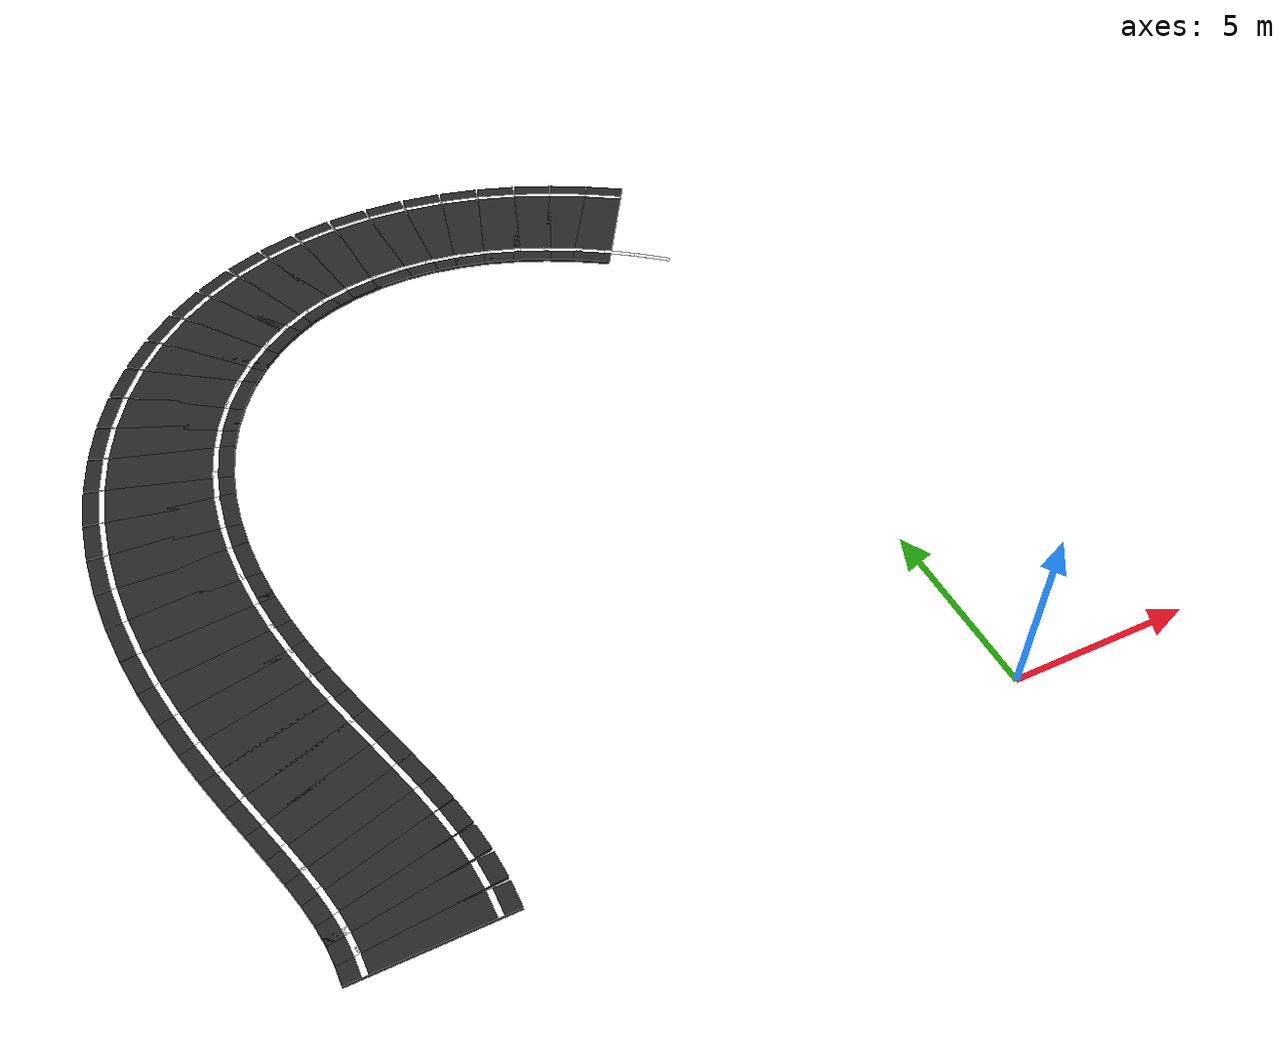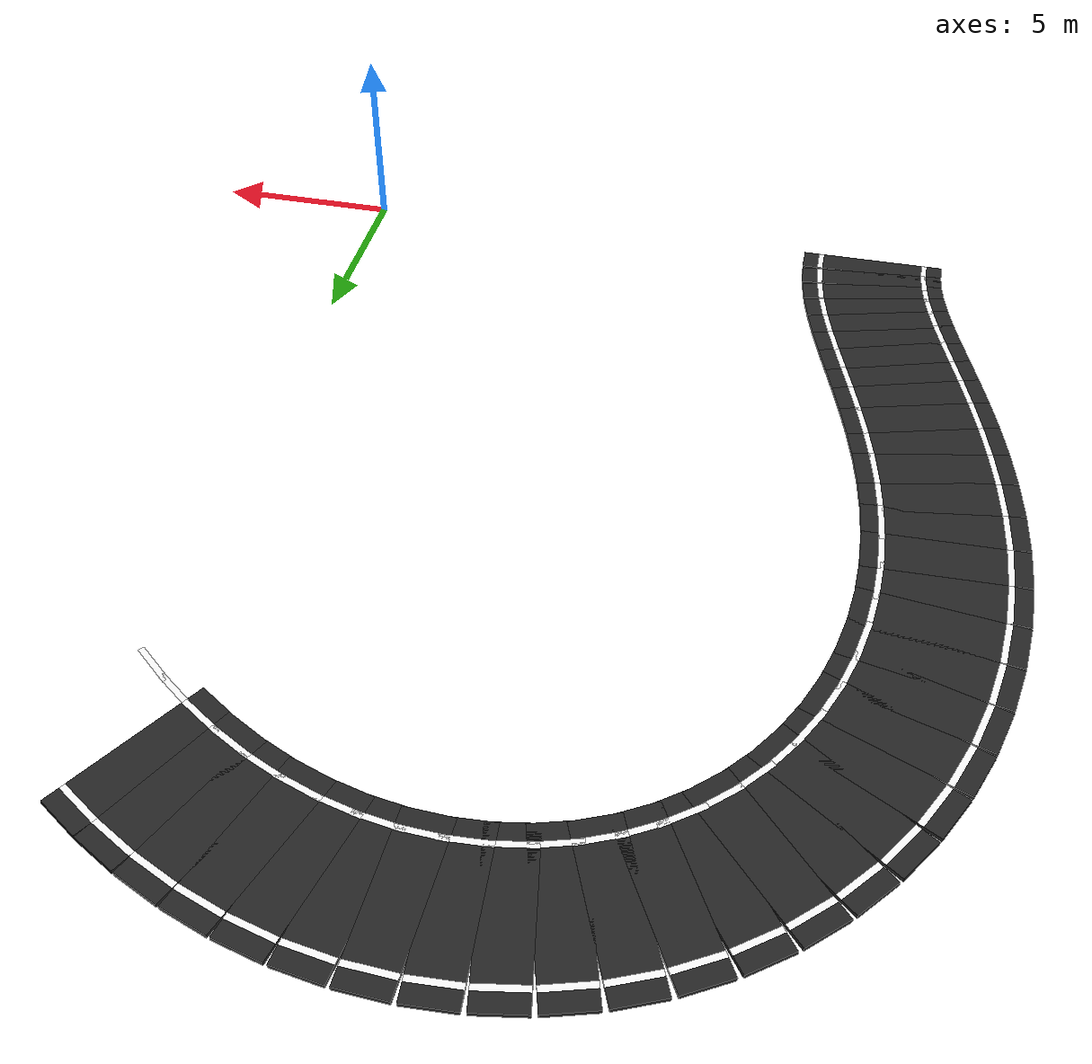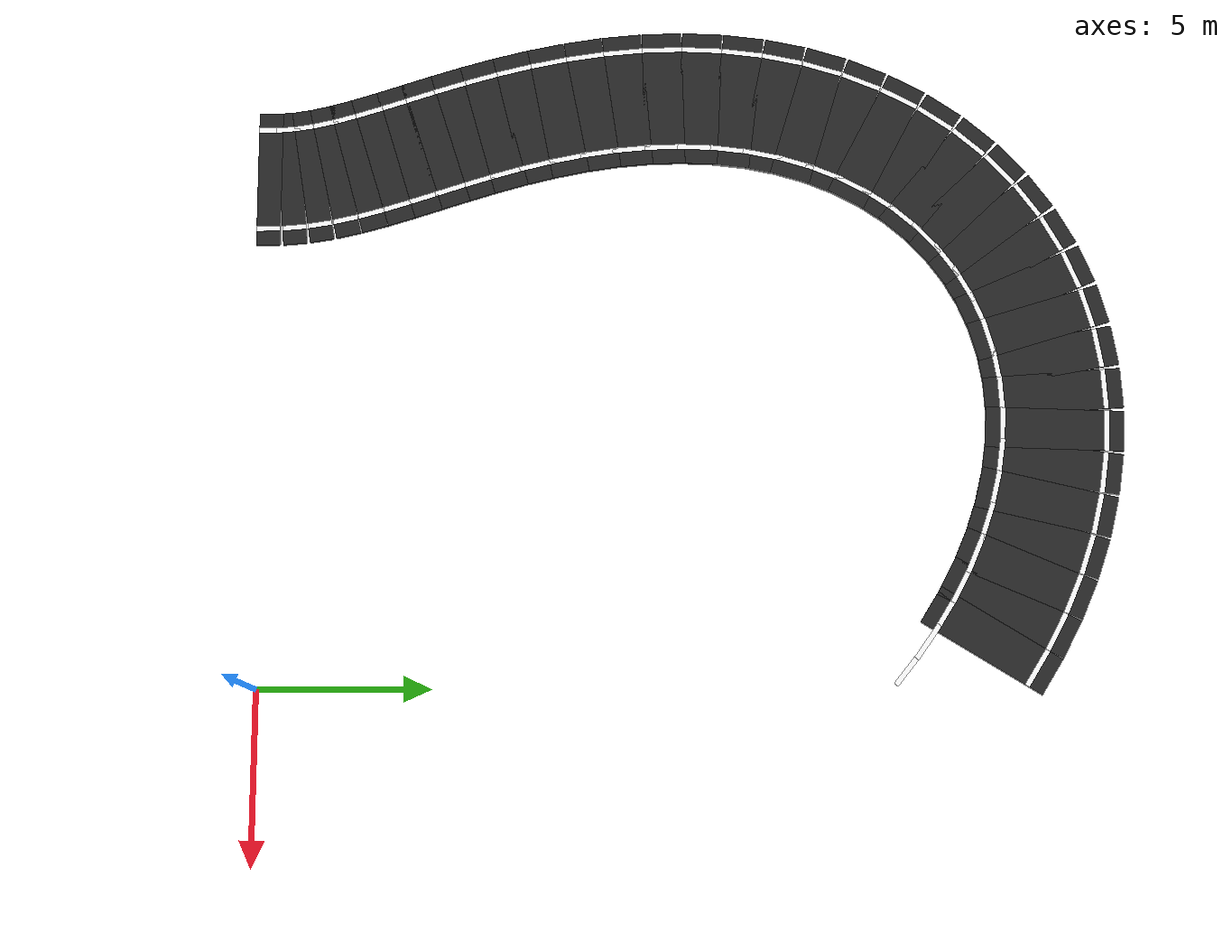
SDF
<sdf version="1.9">
 <world name="curved_race_track">
  <model name="race_track">
   <static>true</static>
   <link name="left_line_37">
    <pose>-0.5205032876881366 18.507026764634727 0.101 0 0 2.470488366783148</pose>
    <visual name="v">
     <geometry><box><size>1.151499805988907 0.15 0.001</size></box></geometry>
     <material><ambient>1 1 1 1</ambient><emissive>0.3 0.3 0.3 1</emissive></material>
    </visual>
   </link>
   <link name="left_line_38">
    <pose>-1.2898240428921142 19.083605329402197 0.101 0 0 2.5274388740351608</pose>
    <visual name="v">
     <geometry><box><size>1.1714934133066275 0.15 0.001</size></box></geometry>
     <material><ambient>1 1 1 1</ambient><emissive>0.3 0.3 0.3 1</emissive></material>
    </visual>
   </link>
   <link name="asphalt_39">
    <pose>-1.314639241050885 20.89559237038833 0.05 0 0 2.5911874485783626</pose>
    <visual name="v">
     <geometry><box><size>1.185370126031344 4.0 0.1</size></box></geometry>
     <material><ambient>0.15 0.15 0.15 1</ambient><diffuse>0.15 0.15 0.15 1</diffuse></material>
    </visual>
    <collision name="c"><geometry><box><size>1.185370126031344 4.0 0.1</size></box></geometry></collision>
   </link>
   <link name="left_line_39">
    <pose>-2.09918819088031 19.61712338549994 0.101 0 0 2.5911874485783626</pose>
    <visual name="v">
     <geometry><box><size>1.185370126031344 0.15 0.001</size></box></geometry>
     <material><ambient>1 1 1 1</ambient><emissive>0.3 0.3 0.3 1</emissive></material>
    </visual>
   </link>
   <link name="right_line_39">
    <pose>-0.5300902912214599 22.174061355276717 0.101 0 0 2.5911874485783626</pose>
    <visual name="v">
     <geometry><box><size>1.185370126031344 0.15 0.001</size></box></geometry>
     <material><ambient>1 1 1 1</ambient><emissive>0.3 0.3 0.3 1</emissive></material>
    </visual>
   </link>
   <link name="asphalt_40">
    <pose>-2.252074623081078 21.427058742099366 0.05 0 0 2.661450680192494</pose>
    <visual name="v">
     <geometry><box><size>1.1935129791848818 4.0 0.1</size></box></geometry>
     <material><ambient>0.15 0.15 0.15 1</ambient><diffuse>0.15 0.15 0.15 1</diffuse></material>
    </visual>
    <collision name="c"><geometry><box><size>1.1935129791848818 4.0 0.1</size></box></geometry></collision>
   </link>
   <link name="left_line_40">
    <pose>-2.9449322739356587 20.096664711876638 0.101 0 0 2.661450680192494</pose>
    <visual name="v">
     <geometry><box><size>1.1935129791848818 0.15 0.001</size></box></geometry>
     <material><ambient>1 1 1 1</ambient><emissive>0.3 0.3 0.3 1</emissive></material>
    </visual>
   </link>
   <link name="right_line_40">
    <pose>-1.5592169722264977 22.757452772322093 0.101 0 0 2.661450680192494</pose>
    <visual name="v">
     <geometry><box><size>1.1935129791848818 0.15 0.001</size></box></geometry>
     <material><ambient>1 1 1 1</ambient><emissive>0.3 0.3 0.3 1</emissive></material>
    </visual>
   </link>
   <link name="asphalt_41">
    <pose>-3.23265621330315 21.891505024729305 0.05 0 0 2.7380340063387227</pose>
    <visual name="v">
     <geometry><box><size>1.1965258177165115 4.0 0.1</size></box></geometry>
     <material><ambient>0.15 0.15 0.15 1</ambient><diffuse>0.15 0.15 0.15 1</diffuse></material>
    </visual>
    <collision name="c"><geometry><box><size>1.1965258177165115 4.0 0.1</size></box></geometry></collision>
   </link>
   <link name="left_line_41">
    <pose>-3.8216966144675992 20.512000981315143 0.101 0 0 2.7380340063387227</pose>
    <visual name="v">
     <geometry><box><size>1.1965258177165115 0.15 0.001</size></box></geometry>
     <material><ambient>1 1 1 1</ambient><emissive>0.3 0.3 0.3 1</emissive></material>
    </visual>
   </link>
   <link name="right_line_41">
    <pose>-2.6436158121387003 23.271009068143467 0.101 0 0 2.7380340063387227</pose>
    <visual name="v">
     <geometry><box><size>1.1965258177165115 0.15 0.001</size></box></geometry>
     <material><ambient>1 1 1 1</ambient><emissive>0.3 0.3 0.3 1</emissive></material>
    </visual>
   </link>
   <link name="asphalt_42">
    <pose>-4.2496459378815965 22.27742416110719 0.05 0 0 2.8207888178940044</pose>
    <visual name="v">
     <geometry><box><size>1.1952063372059092 4.0 0.1</size></box></geometry>
     <material><ambient>0.15 0.15 0.15 1</ambient><diffuse>0.15 0.15 0.15 1</diffuse></material>
    </visual>
    <collision name="c"><geometry><box><size>1.1952063372059092 4.0 0.1</size></box></geometry></collision>
   </link>
   <link name="left_line_42">
    <pose>-4.722640170208347 20.853950783700494 0.101 0 0 2.8207888178940044</pose>
    <visual name="v">
     <geometry><box><size>1.1952063372059092 0.15 0.001</size></box></geometry>
     <material><ambient>1 1 1 1</ambient><emissive>0.3 0.3 0.3 1</emissive></material>
    </visual>
   </link>
   <link name="right_line_42">
    <pose>-3.7766517055548454 23.70089753851389 0.101 0 0 2.8207888178940044</pose>
    <visual name="v">
     <geometry><box><size>1.1952063372059092 0.15 0.001</size></box></geometry>
     <material><ambient>1 1 1 1</ambient><emissive>0.3 0.3 0.3 1</emissive></material>
    </visual>
   </link>
   <link name="asphalt_43">
    <pose>-5.294799015655711 22.574490800486018 0.05 0 0 2.909566555719612</pose>
    <visual name="v">
     <geometry><box><size>1.1905118190557087 4.0 0.1</size></box></geometry>
     <material><ambient>0.15 0.15 0.15 1</ambient><diffuse>0.15 0.15 0.15 1</diffuse></material>
    </visual>
    <collision name="c"><geometry><box><size>1.1905118190557087 4.0 0.1</size></box></geometry></collision>
   </link>
   <link name="left_line_43">
    <pose>-5.639723712149741 21.11468706239363 0.101 0 0 2.909566555719612</pose>
    <visual name="v">
     <geometry><box><size>1.1905118190557087 0.15 0.001</size></box></geometry>
     <material><ambient>1 1 1 1</ambient><emissive>0.3 0.3 0.3 1</emissive></material>
    </visual>
   </link>
   <link name="right_line_43">
    <pose>-4.9498743191616805 24.034294538578404 0.101 0 0 2.909566555719612</pose>
    <visual name="v">
     <geometry><box><size>1.1905118190557087 0.15 0.001</size></box></geometry>
     <material><ambient>1 1 1 1</ambient><emissive>0.3 0.3 0.3 1</emissive></material>
    </visual>
   </link>
   <link name="asphalt_44">
    <pose>-6.358566974906923 22.773827807464027 0.05 0 0 3.004169273399351</pose>
    <visual name="v">
     <geometry><box><size>1.1835150671737356 4.0 0.1</size></box></geometry>
     <material><ambient>0.15 0.15 0.15 1</ambient><diffuse>0.15 0.15 0.15 1</diffuse></material>
    </visual>
    <collision name="c"><geometry><box><size>1.1835150671737356 4.0 0.1</size></box></geometry></collision>
   </link>
   <link name="left_line_44">
    <pose>-6.564053841064094 21.28796941991934 0.101 0 0 3.004169273399351</pose>
    <visual name="v">
     <geometry><box><size>1.1835150671737356 0.15 0.001</size></box></geometry>
     <material><ambient>1 1 1 1</ambient><emissive>0.3 0.3 0.3 1</emissive></material>
    </visual>
   </link>
   <link name="right_line_44">
    <pose>-6.1530801087497515 24.259686195008715 0.101 0 0 3.004169273399351</pose>
    <visual name="v">
     <geometry><box><size>1.1835150671737356 0.15 0.001</size></box></geometry>
     <material><ambient>1 1 1 1</ambient><emissive>0.3 0.3 0.3 1</emissive></material>
    </visual>
   </link>
   <link name="asphalt_45">
    <pose>-7.430339887498946 22.86823474737214 0.05 0 0 3.10429804697375</pose>
    <visual name="v">
     <geometry><box><size>1.1753487668691187 4.0 0.1</size></box></geometry>
     <material><ambient>0.15 0.15 0.15 1</ambient><diffuse>0.15 0.15 0.15 1</diffuse></material>
    </visual>
    <collision name="c"><geometry><box><size>1.1753487668691187 4.0 0.1</size></box></geometry></collision>
   </link>
   <link name="left_line_45">
    <pose>-7.486268830172601 21.369277792229195 0.101 0 0 3.10429804697375</pose>
    <visual name="v">
     <geometry><box><size>1.1753487668691187 0.15 0.001</size></box></geometry>
     <material><ambient>1 1 1 1</ambient><emissive>0.3 0.3 0.3 1</emissive></material>
    </visual>
   </link>
   <link name="right_line_45">
    <pose>-7.374410944825292 24.367191702515083 0.101 0 0 3.10429804697375</pose>
    <visual name="v">
     <geometry><box><size>1.1753487668691187 0.15 0.001</size></box></geometry>
     <material><ambient>1 1 1 1</ambient><emissive>0.3 0.3 0.3 1</emissive></material>
    </visual>
   </link>
   <link name="asphalt_46">
    <pose>-8.49872101415966 22.852372132220562 0.05 0 0 -3.0736818854059287</pose>
    <visual name="v">
     <geometry><box><size>1.167138017327716 4.0 0.1</size></box></geometry>
     <material><ambient>0.15 0.15 0.15 1</ambient><diffuse>0.15 0.15 0.15 1</diffuse></material>
    </visual>
    <collision name="c"><geometry><box><size>1.167138017327716 4.0 0.1</size></box></geometry></collision>
   </link>
   <link name="left_line_46">
    <pose>-8.396933142780568 21.355829707415936 0.101 0 0 -3.0736818854059287</pose>
    <visual name="v">
     <geometry><box><size>1.167138017327716 0.15 0.001</size></box></geometry>
     <material><ambient>1 1 1 1</ambient><emissive>0.3 0.3 0.3 1</emissive></material>
    </visual>
   </link>
   <link name="right_line_46">
    <pose>-8.600508885538751 24.34891455702519 0.101 0 0 -3.0736818854059287</pose>
    <visual name="v">
     <geometry><box><size>1.167138017327716 0.15 0.001</size></box></geometry>
     <material><ambient>1 1 1 1</ambient><emissive>0.3 0.3 0.3 1</emissive></material>
    </visual>
   </link>
   <link name="asphalt_47">
    <pose>-9.551826130033866 22.722896439539134 0.05 0 0 -2.964040043663822</pose>
    <visual name="v">
     <geometry><box><size>1.1599233334616201 4.0 0.1</size></box></geometry>
     <material><ambient>0.15 0.15 0.15 1</ambient><diffuse>0.15 0.15 0.15 1</diffuse></material>
    </visual>
    <collision name="c"><geometry><box><size>1.1599233334616201 4.0 0.1</size></box></geometry></collision>
   </link>
   <link name="left_line_47">
    <pose>-9.28689434447385 21.246478087919247 0.101 0 0 -2.964040043663822</pose>
    <visual name="v">
     <geometry><box><size>1.1599233334616201 0.15 0.001</size></box></geometry>
     <material><ambient>1 1 1 1</ambient><emissive>0.3 0.3 0.3 1</emissive></material>
    </visual>
   </link>
   <link name="right_line_47">
    <pose>-9.816757915593882 24.199314791159022 0.101 0 0 -2.964040043663822</pose>
    <visual name="v">
     <geometry><box><size>1.1599233334616201 0.15 0.001</size></box></geometry>
     <material><ambient>1 1 1 1</ambient><emissive>0.3 0.3 0.3 1</emissive></material>
    </visual>
   </link>
   <link name="asphalt_48">
    <pose>-10.57759909213749 22.478542283081584 0.05 0 0 -2.8508135886186428</pose>
    <visual name="v">
     <geometry><box><size>1.1545797828012236 4.0 0.1</size></box></geometry>
     <material><ambient>0.15 0.15 0.15 1</ambient><diffuse>0.15 0.15 0.15 1</diffuse></material>
    </visual>
    <collision name="c"><geometry><box><size>1.1545797828012236 4.0 0.1</size></box></geometry></collision>
   </link>
   <link name="left_line_48">
    <pose>-10.14755108340502 21.04151106902072 0.101 0 0 -2.8508135886186428</pose>
    <visual name="v">
     <geometry><box><size>1.1545797828012236 0.15 0.001</size></box></geometry>
     <material><ambient>1 1 1 1</ambient><emissive>0.3 0.3 0.3 1</emissive></material>
    </visual>
   </link>
   <link name="right_line_48">
    <pose>-11.00764710086996 23.915573497142447 0.101 0 0 -2.8508135886186428</pose>
    <visual name="v">
     <geometry><box><size>1.1545797828012236 0.15 0.001</size></box></geometry>
     <material><ambient>1 1 1 1</ambient><emissive>0.3 0.3 0.3 1</emissive></material>
    </visual>
   </link>
   <link name="asphalt_49">
    <pose>-11.564134739912845 22.120149581188286 0.05 0 0 -2.7350585596842443</pose>
    <visual name="v">
     <geometry><box><size>1.1517413086948736 4.0 0.1</size></box></geometry>
     <material><ambient>0.15 0.15 0.15 1</ambient><diffuse>0.15 0.15 0.15 1</diffuse></material>
    </visual>
    <collision name="c"><geometry><box><size>1.1517413086948736 4.0 0.1</size></box></geometry></collision>
   </link>
   <link name="left_line_49">
    <pose>-10.970992311582869 20.742404300044193 0.101 0 0 -2.7350585596842443</pose>
    <visual name="v">
     <geometry><box><size>1.1517413086948736 0.15 0.001</size></box></geometry>
     <material><ambient>1 1 1 1</ambient><emissive>0.3 0.3 0.3 1</emissive></material>
    </visual>
   </link>
   <link name="right_line_49">
    <pose>-12.157277168242821 23.49789486233238 0.101 0 0 -2.7350585596842443</pose>
    <visual name="v">
     <geometry><box><size>1.1517413086948736 0.15 0.001</size></box></geometry>
     <material><ambient>1 1 1 1</ambient><emissive>0.3 0.3 0.3 1</emissive></material>
    </visual>
   </link>
   <link name="asphalt_50">
    <pose>-12.499999999999995 21.65063509461097 0.05 0 0 -2.617993877991495</pose>
    <visual name="v">
     <geometry><box><size>1.1517413086948864 4.0 0.1</size></box></geometry>
     <material><ambient>0.15 0.15 0.15 1</ambient><diffuse>0.15 0.15 0.15 1</diffuse></material>
    </visual>
    <collision name="c"><geometry><box><size>1.1517413086948864 4.0 0.1</size></box></geometry></collision>
   </link>
   <link name="left_line_50">
    <pose>-11.749999999999995 20.35159698893431 0.101 0 0 -2.617993877991495</pose>
    <visual name="v">
     <geometry><box><size>1.1517413086948864 0.15 0.001</size></box></geometry>
     <material><ambient>1 1 1 1</ambient><emissive>0.3 0.3 0.3 1</emissive></material>
    </visual>
   </link>
   <link name="right_line_50">
    <pose>-13.249999999999995 22.949673200287627 0.101 0 0 -2.617993877991495</pose>
    <visual name="v">
     <geometry><box><size>1.1517413086948864 0.15 0.001</size></box></geometry>
     <material><ambient>1 1 1 1</ambient><emissive>0.3 0.3 0.3 1</emissive></material>
    </visual>
   </link>
   <link name="asphalt_51">
    <pose>-13.374544102864345 21.07490924814482 0.05 0 0 -2.500929196298745</pose>
    <visual name="v">
     <geometry><box><size>1.154579782801222 4.0 0.1</size></box></geometry>
     <material><ambient>0.15 0.15 0.15 1</ambient><diffuse>0.15 0.15 0.15 1</diffuse></material>
    </visual>
    <collision name="c"><geometry><box><size>1.154579782801222 4.0 0.1</size></box></geometry></collision>
   </link>
   <link name="left_line_51">
    <pose>-12.477952903614415 19.872360196576622 0.101 0 0 -2.500929196298745</pose>
    <visual name="v">
     <geometry><box><size>1.154579782801222 0.15 0.001</size></box></geometry>
     <material><ambient>1 1 1 1</ambient><emissive>0.3 0.3 0.3 1</emissive></material>
    </visual>
   </link>
   <link name="right_line_51">
    <pose>-14.271135302114274 22.277458299713018 0.101 0 0 -2.500929196298745</pose>
    <visual name="v">
     <geometry><box><size>1.154579782801222 0.15 0.001</size></box></geometry>
     <material><ambient>1 1 1 1</ambient><emissive>0.3 0.3 0.3 1</emissive></material>
    </visual>
   </link>
   <link name="asphalt_52">
    <pose>-14.17818911112256 20.399740666379074 0.05 0 0 -2.385174167364346</pose>
    <visual name="v">
     <geometry><box><size>1.1599233334616208 4.0 0.1</size></box></geometry>
     <material><ambient>0.15 0.15 0.15 1</ambient><diffuse>0.15 0.15 0.15 1</diffuse></material>
    </visual>
    <collision name="c"><geometry><box><size>1.1599233334616208 4.0 0.1</size></box></geometry></collision>
   </link>
   <link name="left_line_52">
    <pose>-13.148707578080895 19.308792558939412 0.101 0 0 -2.385174167364346</pose>
    <visual name="v">
     <geometry><box><size>1.1599233334616208 0.15 0.001</size></box></geometry>
     <material><ambient>1 1 1 1</ambient><emissive>0.3 0.3 0.3 1</emissive></material>
    </visual>
   </link>
   <link name="right_line_52">
    <pose>-15.207670644164224 21.490688773818736 0.101 0 0 -2.385174167364346</pose>
    <visual name="v">
     <geometry><box><size>1.1599233334616208 0.15 0.001</size></box></geometry>
     <material><ambient>1 1 1 1</ambient><emissive>0.3 0.3 0.3 1</emissive></material>
    </visual>
   </link>
   <link name="asphalt_53">
    <pose>-14.902692499186928 19.6335723009109 0.05 0 0 -2.271947712319167</pose>
    <visual name="v">
     <geometry><box><size>1.167138017327711 4.0 0.1</size></box></geometry>
     <material><ambient>0.15 0.15 0.15 1</ambient><diffuse>0.15 0.15 0.15 1</diffuse></material>
    </visual>
    <collision name="c"><geometry><box><size>1.167138017327711 4.0 0.1</size></box></geometry></collision>
   </link>
   <link name="left_line_53">
    <pose>-13.75654259285057 18.66592546853601 0.101 0 0 -2.271947712319167</pose>
    <visual name="v">
     <geometry><box><size>1.167138017327711 0.15 0.001</size></box></geometry>
     <material><ambient>1 1 1 1</ambient><emissive>0.3 0.3 0.3 1</emissive></material>
    </visual>
   </link>
   <link name="right_line_53">
    <pose>-16.04884240552329 20.601219133285788 0.101 0 0 -2.271947712319167</pose>
    <visual name="v">
     <geometry><box><size>1.167138017327711 0.15 0.001</size></box></geometry>
     <material><ambient>1 1 1 1</ambient><emissive>0.3 0.3 0.3 1</emissive></material>
    </visual>
   </link>
   <link name="asphalt_54">
    <pose>-15.541374296158736 18.7862943640492 0.05 0 0 -2.1623058705770606</pose>
    <visual name="v">
     <geometry><box><size>1.1753487668691114 4.0 0.1</size></box></geometry>
     <material><ambient>0.15 0.15 0.15 1</ambient><diffuse>0.15 0.15 0.15 1</diffuse></material>
    </visual>
    <collision name="c"><geometry><box><size>1.1753487668691114 4.0 0.1</size></box></geometry></collision>
   </link>
   <link name="left_line_54">
    <pose>-14.296224474126312 17.949872269235453 0.101 0 0 -2.1623058705770606</pose>
    <visual name="v">
     <geometry><box><size>1.1753487668691114 0.15 0.001</size></box></geometry>
     <material><ambient>1 1 1 1</ambient><emissive>0.3 0.3 0.3 1</emissive></material>
    </visual>
   </link>
   <link name="right_line_54">
    <pose>-16.78652411819116 19.62271645886295 0.101 0 0 -2.1623058705770606</pose>
    <visual name="v">
     <geometry><box><size>1.1753487668691114 0.15 0.001</size></box></geometry>
     <material><ambient>1 1 1 1</ambient><emissive>0.3 0.3 0.3 1</emissive></material>
    </visual>
   </link>
   <link name="asphalt_55">
    <pose>-16.089302287180807 17.868980475012975 0.05 0 0 -2.0571004957771533</pose>
    <visual name="v">
     <geometry><box><size>1.18351506717375 4.0 0.1</size></box></geometry>
     <material><ambient>0.15 0.15 0.15 1</ambient><diffuse>0.15 0.15 0.15 1</diffuse></material>
    </visual>
    <collision name="c"><geometry><box><size>1.18351506717375 4.0 0.1</size></box></geometry></collision>
   </link>
   <link name="left_line_55">
    <pose>-14.76320301351082 17.167937882603688 0.101 0 0 -2.0571004957771533</pose>
    <visual name="v">
     <geometry><box><size>1.18351506717375 0.15 0.001</size></box></geometry>
     <material><ambient>1 1 1 1</ambient><emissive>0.3 0.3 0.3 1</emissive></material>
    </visual>
   </link>
   <link name="right_line_55">
    <pose>-17.415401560850796 18.570023067422262 0.101 0 0 -2.0571004957771533</pose>
    <visual name="v">
     <geometry><box><size>1.18351506717375 0.15 0.001</size></box></geometry>
     <material><ambient>1 1 1 1</ambient><emissive>0.3 0.3 0.3 1</emissive></material>
    </visual>
   </link>
   <link name="asphalt_56">
    <pose>-16.54342993522285 16.893594435666177 0.05 0 0 -1.956971722202753</pose>
    <visual name="v">
     <geometry><box><size>1.1905118190557027 4.0 0.1</size></box></geometry>
     <material><ambient>0.15 0.15 0.15 1</ambient><diffuse>0.15 0.15 0.15 1</diffuse></material>
    </visual>
    <collision name="c"><geometry><box><size>1.1905118190557027 4.0 0.1</size></box></geometry></collision>
   </link>
   <link name="left_line_56">
    <pose>-15.15389539210438 16.328622088129997 0.101 0 0 -1.956971722202753</pose>
    <visual name="v">
     <geometry><box><size>1.1905118190557027 0.15 0.001</size></box></geometry>
     <material><ambient>1 1 1 1</ambient><emissive>0.3 0.3 0.3 1</emissive></material>
    </visual>
   </link>
   <link name="right_line_56">
    <pose>-17.93296447834132 17.458566783202357 0.101 0 0 -1.956971722202753</pose>
    <visual name="v">
     <geometry><box><size>1.1905118190557027 0.15 0.001</size></box></geometry>
     <material><ambient>1 1 1 1</ambient><emissive>0.3 0.3 0.3 1</emissive></material>
    </visual>
   </link>
   <link name="asphalt_57">
    <pose>-16.902683002891138 15.872675855733696 0.05 0 0 -1.8623690045230148</pose>
    <visual name="v">
     <geometry><box><size>1.1952063372059114 4.0 0.1</size></box></geometry>
     <material><ambient>0.15 0.15 0.15 1</ambient><diffuse>0.15 0.15 0.15 1</diffuse></material>
    </visual>
    <collision name="c"><geometry><box><size>1.1952063372059114 4.0 0.1</size></box></geometry></collision>
   </link>
   <link name="left_line_57">
    <pose>-15.465993532916633 15.44148753624397 0.101 0 0 -1.8623690045230148</pose>
    <visual name="v">
     <geometry><box><size>1.1952063372059114 0.15 0.001</size></box></geometry>
     <material><ambient>1 1 1 1</ambient><emissive>0.3 0.3 0.3 1</emissive></material>
    </visual>
   </link>
   <link name="right_line_57">
    <pose>-18.339372472865644 16.303864175223424 0.101 0 0 -1.8623690045230148</pose>
    <visual name="v">
     <geometry><box><size>1.1952063372059114 0.15 0.001</size></box></geometry>
     <material><ambient>1 1 1 1</ambient><emissive>0.3 0.3 0.3 1</emissive></material>
    </visual>
   </link>
   <link name="asphalt_58">
    <pose>-17.167992285459267 14.819013419848407 0.05 0 0 -1.7735912666974067</pose>
    <visual name="v">
     <geometry><box><size>1.1965258177165055 4.0 0.1</size></box></geometry>
     <material><ambient>0.15 0.15 0.15 1</ambient><diffuse>0.15 0.15 0.15 1</diffuse></material>
    </visual>
    <collision name="c"><geometry><box><size>1.1965258177165055 4.0 0.1</size></box></geometry></collision>
   </link>
   <link name="left_line_58">
    <pose>-15.698731062850857 14.516901752183543 0.101 0 0 -1.7735912666974067</pose>
    <visual name="v">
     <geometry><box><size>1.1965258177165055 0.15 0.001</size></box></geometry>
     <material><ambient>1 1 1 1</ambient><emissive>0.3 0.3 0.3 1</emissive></material>
    </visual>
   </link>
   <link name="right_line_58">
    <pose>-18.637253508067676 15.12112508751327 0.101 0 0 -1.7735912666974067</pose>
    <visual name="v">
     <geometry><box><size>1.1965258177165055 0.15 0.001</size></box></geometry>
     <material><ambient>1 1 1 1</ambient><emissive>0.3 0.3 0.3 1</emissive></material>
    </visual>
   </link>
   <link name="asphalt_59">
    <pose>-17.342271371838688 13.745314914786794 0.05 0 0 -1.6908364551421255</pose>
    <visual name="v">
     <geometry><box><size>1.193512979184882 4.0 0.1</size></box></geometry>
     <material><ambient>0.15 0.15 0.15 1</ambient><diffuse>0.15 0.15 0.15 1</diffuse></material>
    </visual>
    <collision name="c"><geometry><box><size>1.193512979184882 4.0 0.1</size></box></geometry></collision>
   </link>
   <link name="left_line_59">
    <pose>-15.853065625036447 13.565686844343503 0.101 0 0 -1.6908364551421255</pose>
    <visual name="v">
     <geometry><box><size>1.193512979184882 0.15 0.001</size></box></geometry>
     <material><ambient>1 1 1 1</ambient><emissive>0.3 0.3 0.3 1</emissive></material>
    </visual>
   </link>
   <link name="right_line_59">
    <pose>-18.83147711864093 13.924942985230086 0.101 0 0 -1.6908364551421255</pose>
    <visual name="v">
     <geometry><box><size>1.193512979184882 0.15 0.001</size></box></geometry>
     <material><ambient>1 1 1 1</ambient><emissive>0.3 0.3 0.3 1</emissive></material>
    </visual>
   </link>
   <link name="asphalt_60">
    <pose>-17.43033988749895 12.663883205856168 0.05 0 0 -1.6142531289958968</pose>
    <visual name="v">
     <geometry><box><size>1.1853701260313516 4.0 0.1</size></box></geometry>
     <material><ambient>0.15 0.15 0.15 1</ambient><diffuse>0.15 0.15 0.15 1</diffuse></material>
    </visual>
    <collision name="c"><geometry><box><size>1.1853701260313516 4.0 0.1</size></box></geometry></collision>
   </link>
   <link name="left_line_60">
    <pose>-15.931756034855614 12.59871851759128 0.101 0 0 -1.6142531289958968</pose>
    <visual name="v">
     <geometry><box><size>1.1853701260313516 0.15 0.001</size></box></geometry>
     <material><ambient>1 1 1 1</ambient><emissive>0.3 0.3 0.3 1</emissive></material>
    </visual>
   </link>
   <link name="right_line_60">
    <pose>-18.928923740142285 12.729047894121056 0.101 0 0 -1.6142531289958968</pose>
    <visual name="v">
     <geometry><box><size>1.1853701260313516 0.15 0.001</size></box></geometry>
     <material><ambient>1 1 1 1</ambient><emissive>0.3 0.3 0.3 1</emissive></material>
    </visual>
   </link>
   <link name="asphalt_61">
    <pose>-17.438794199355147 11.586307164756125 0.05 0 0 -1.5439898973817647</pose>
    <visual name="v">
     <geometry><box><size>1.1714934133066293 4.0 0.1</size></box></geometry>
     <material><ambient>0.15 0.15 0.15 1</ambient><diffuse>0.15 0.15 0.15 1</diffuse></material>
    </visual>
    <collision name="c"><geometry><box><size>1.1714934133066293 4.0 0.1</size></box></geometry></collision>
   </link>
   <link name="left_line_61">
    <pose>-15.939333105576587 11.626511993376615 0.101 0 0 -1.5439898973817647</pose>
    <visual name="v">
     <geometry><box><size>1.1714934133066293 0.15 0.001</size></box></geometry>
     <material><ambient>1 1 1 1</ambient><emissive>0.3 0.3 0.3 1</emissive></material>
    </visual>
   </link>
   <link name="right_line_61">
    <pose>-18.938255293133707 11.546102336135634 0.101 0 0 -1.5439898973817647</pose>
    <visual name="v">
     <geometry><box><size>1.1714934133066293 0.15 0.001</size></box></geometry>
     <material><ambient>1 1 1 1</ambient><emissive>0.3 0.3 0.3 1</emissive></material>
    </visual>
   </link>
   <link name="asphalt_62">
    <pose>-17.375829034621557 10.523176112706379 0.05 0 0 -1.480241322838563</pose>
    <visual name="v">
     <geometry><box><size>1.1514998059888937 4.0 0.1</size></box></geometry>
     <material><ambient>0.15 0.15 0.15 1</ambient><diffuse>0.15 0.15 0.15 1</diffuse></material>
    </visual>
    <collision name="c"><geometry><box><size>1.1514998059888937 4.0 0.1</size></box></geometry></collision>
   </link>
   <link name="left_line_62">
    <pose>-15.881974989612345 10.658823052257619 0.101 0 0 -1.480241322838563</pose>
    <visual name="v">
     <geometry><box><size>1.1514998059888937 0.15 0.001</size></box></geometry>
     <material><ambient>1 1 1 1</ambient><emissive>0.3 0.3 0.3 1</emissive></material>
    </visual>
   </link>
   <link name="right_line_62">
    <pose>-18.869683079630768 10.387529173155139 0.101 0 0 -1.480241322838563</pose>
    <visual name="v">
     <geometry><box><size>1.1514998059888937 0.15 0.001</size></box></geometry>
     <material><ambient>1 1 1 1</ambient><emissive>0.3 0.3 0.3 1</emissive></material>
    </visual>
   </link>
   <link name="asphalt_63">
    <pose>-17.25101484234246 9.483825664624304 0.05 0 0 -1.423290815586551</pose>
    <visual name="v">
     <geometry><box><size>1.1252494421990475 4.0 0.1</size></box></geometry>
     <material><ambient>0.15 0.15 0.15 1</ambient><diffuse>0.15 0.15 0.15 1</diffuse></material>
    </visual>
    <collision name="c"><geometry><box><size>1.1252494421990475 4.0 0.1</size></box></geometry></collision>
   </link>
   <link name="left_line_63">
    <pose>-15.767303682848132 9.70428245220862 0.101 0 0 -1.423290815586551</pose>
    <visual name="v">
     <geometry><box><size>1.1252494421990475 0.15 0.001</size></box></geometry>
     <material><ambient>1 1 1 1</ambient><emissive>0.3 0.3 0.3 1</emissive></material>
    </visual>
   </link>
   <link name="right_line_63">
    <pose>-18.734726001836787 9.263368877039987 0.101 0 0 -1.423290815586551</pose>
    <visual name="v">
     <geometry><box><size>1.1252494421990475 0.15 0.001</size></box></geometry>
     <material><ambient>1 1 1 1</ambient><emissive>0.3 0.3 0.3 1</emissive></material>
    </visual>
   </link>
   <link name="asphalt_64">
    <pose>-17.075036969170483 8.476121961764893 0.05 0 0 -1.3735519273138683</pose>
    <visual name="v">
     <geometry><box><size>1.0928661026759772 4.0 0.1</size></box></geometry>
     <material><ambient>0.15 0.15 0.15 1</ambient><diffuse>0.15 0.15 0.15 1</diffuse></material>
    </visual>
    <collision name="c"><geometry><box><size>1.0928661026759772 4.0 0.1</size></box></geometry></collision>
   </link>
   <link name="left_line_64">
    <pose>-15.604121504957586 8.770073823707214 0.101 0 0 -1.3735519273138683</pose>
    <visual name="v">
     <geometry><box><size>1.0928661026759772 0.15 0.001</size></box></geometry>
     <material><ambient>1 1 1 1</ambient><emissive>0.3 0.3 0.3 1</emissive></material>
    </visual>
   </link>
   <link name="right_line_64">
    <pose>-18.54595243338338 8.18217009982257 0.101 0 0 -1.3735519273138683</pose>
    <visual name="v">
     <geometry><box><size>1.0928661026759772 0.15 0.001</size></box></geometry>
     <material><ambient>1 1 1 1</ambient><emissive>0.3 0.3 0.3 1</emissive></material>
    </visual>
   </link>
   <link name="asphalt_65">
    <pose>-16.85940379512401 7.506290186788804 0.05 0 0 -1.3316092709886191</pose>
    <visual name="v">
     <geometry><box><size>1.0547584072677882 4.0 0.1</size></box></geometry>
     <material><ambient>0.15 0.15 0.15 1</ambient><diffuse>0.15 0.15 0.15 1</diffuse></material>
    </visual>
    <collision name="c"><geometry><box><size>1.0547584072677882 4.0 0.1</size></box></geometry></collision>
   </link>
   <link name="left_line_65">
    <pose>-15.402107455875 7.861659543390406 0.101 0 0 -1.3316092709886191</pose>
    <visual name="v">
     <geometry><box><size>1.0547584072677882 0.15 0.001</size></box></geometry>
     <material><ambient>1 1 1 1</ambient><emissive>0.3 0.3 0.3 1</emissive></material>
    </visual>
   </link>
   <link name="right_line_65">
    <pose>-18.31670013437302 7.150920830187202 0.101 0 0 -1.3316092709886191</pose>
    <visual name="v">
     <geometry><box><size>1.0547584072677882 0.15 0.001</size></box></geometry>
     <material><ambient>1 1 1 1</ambient><emissive>0.3 0.3 0.3 1</emissive></material>
    </visual>
   </link>
   <link name="asphalt_66">
    <pose>-16.616131850388218 6.578791997444607 0.05 0 0 -1.2982587562478198</pose>
    <visual name="v">
     <geometry><box><size>1.0116441791364004 4.0 0.1</size></box></geometry>
     <material><ambient>0.15 0.15 0.15 1</ambient><diffuse>0.15 0.15 0.15 1</diffuse></material>
    </visual>
    <collision name="c"><geometry><box><size>1.0116441791364004 4.0 0.1</size></box></geometry></collision>
   </link>
   <link name="left_line_66">
    <pose>-15.171495433985495 6.982556315336983 0.101 0 0 -1.2982587562478198</pose>
    <visual name="v">
     <geometry><box><size>1.0116441791364004 0.15 0.001</size></box></geometry>
     <material><ambient>1 1 1 1</ambient><emissive>0.3 0.3 0.3 1</emissive></material>
    </visual>
   </link>
   <link name="right_line_66">
    <pose>-18.06076826679094 6.1750276795522305 0.101 0 0 -1.2982587562478198</pose>
    <visual name="v">
     <geometry><box><size>1.0116441791364004 0.15 0.001</size></box></geometry>
     <material><ambient>1 1 1 1</ambient><emissive>0.3 0.3 0.3 1</emissive></material>
    </visual>
   </link>
   <link name="asphalt_67">
    <pose>-16.35741658615838 5.696255128284542 0.05 0 0 -1.2745431034344719</pose>
    <visual name="v">
     <geometry><box><size>0.964579854375915 4.0 0.1</size></box></geometry>
     <material><ambient>0.15 0.15 0.15 1</ambient><diffuse>0.15 0.15 0.15 1</diffuse></material>
    </visual>
    <collision name="c"><geometry><box><size>0.964579854375915 4.0 0.1</size></box></geometry></collision>
   </link>
   <link name="left_line_67">
    <pose>-14.922761042534308 6.134163190723129 0.101 0 0 -1.2745431034344719</pose>
    <visual name="v">
     <geometry><box><size>0.964579854375915 0.15 0.001</size></box></geometry>
     <material><ambient>1 1 1 1</ambient><emissive>0.3 0.3 0.3 1</emissive></material>
    </visual>
   </link>
   <link name="right_line_67">
    <pose>-17.79207212978245 5.258347065845955 0.101 0 0 -1.2745431034344719</pose>
    <visual name="v">
     <geometry><box><size>0.964579854375915 0.15 0.001</size></box></geometry>
     <material><ambient>1 1 1 1</ambient><emissive>0.3 0.3 0.3 1</emissive></material>
    </visual>
   </link>
   <link name="asphalt_68">
    <pose>-16.09529788273584 4.859456933026542 0.05 0 0 -1.2617710013660803</pose>
    <visual name="v">
     <geometry><box><size>0.9149951303041128 4.0 0.1</size></box></geometry>
     <material><ambient>0.15 0.15 0.15 1</ambient><diffuse>0.15 0.15 0.15 1</diffuse></material>
    </visual>
    <collision name="c"><geometry><box><size>0.9149951303041128 4.0 0.1</size></box></geometry></collision>
   </link>
   <link name="left_line_68">
    <pose>-14.666352207165236 5.315652347589285 0.101 0 0 -1.2617710013660803</pose>
    <visual name="v">
     <geometry><box><size>0.9149951303041128 0.15 0.001</size></box></geometry>
     <material><ambient>1 1 1 1</ambient><emissive>0.3 0.3 0.3 1</emissive></material>
    </visual>
   </link>
   <link name="right_line_68">
    <pose>-17.52424355830644 4.403261518463799 0.101 0 0 -1.2617710013660803</pose>
    <visual name="v">
     <geometry><box><size>0.9149951303041128 0.15 0.001</size></box></geometry>
     <material><ambient>1 1 1 1</ambient><emissive>0.3 0.3 0.3 1</emissive></material>
    </visual>
   </link>
   <link name="asphalt_69">
    <pose>-15.841329535015468 4.067362114796346 0.05 0 0 -1.2614942160098759</pose>
    <visual name="v">
     <geometry><box><size>0.8647287213029902 4.0 0.1</size></box></geometry>
     <material><ambient>0.15 0.15 0.15 1</ambient><diffuse>0.15 0.15 0.15 1</diffuse></material>
    </visual>
    <collision name="c"><geometry><box><size>0.8647287213029902 4.0 0.1</size></box></geometry></collision>
   </link>
   <link name="left_line_69">
    <pose>-14.41251018238943 4.523953023117254 0.101 0 0 -1.2614942160098759</pose>
    <visual name="v">
     <geometry><box><size>0.8647287213029902 0.15 0.001</size></box></geometry>
     <material><ambient>1 1 1 1</ambient><emissive>0.3 0.3 0.3 1</emissive></material>
    </visual>
   </link>
   <link name="right_line_69">
    <pose>-17.270148887641504 3.6107712064754383 0.101 0 0 -1.2614942160098759</pose>
    <visual name="v">
     <geometry><box><size>0.8647287213029902 0.15 0.001</size></box></geometry>
     <material><ambient>1 1 1 1</ambient><emissive>0.3 0.3 0.3 1</emissive></material>
    </visual>
   </link>
   <link name="asphalt_70">
    <pose>-15.606261854672466 3.3172133603512015 0.05 0 0 -1.27539420382801</pose>
    <visual name="v">
     <geometry><box><size>0.8160515710137742 4.0 0.1</size></box></geometry>
     <material><ambient>0.15 0.15 0.15 1</ambient><diffuse>0.15 0.15 0.15 1</diffuse></material>
    </visual>
    <collision name="c"><geometry><box><size>0.8160515710137742 4.0 0.1</size></box></geometry></collision>
   </link>
   <link name="left_line_70">
    <pose>-14.171234126981151 3.7539002284352994 0.101 0 0 -1.27539420382801</pose>
    <visual name="v">
     <geometry><box><size>0.8160515710137742 0.15 0.001</size></box></geometry>
     <material><ambient>1 1 1 1</ambient><emissive>0.3 0.3 0.3 1</emissive></material>
    </visual>
   </link>
   <link name="right_line_70">
    <pose>-17.04128958236378 2.8805264922671037 0.101 0 0 -1.27539420382801</pose>
    <visual name="v">
     <geometry><box><size>0.8160515710137742 0.15 0.001</size></box></geometry>
     <material><ambient>1 1 1 1</ambient><emissive>0.3 0.3 0.3 1</emissive></material>
    </visual>
   </link>
   <link name="asphalt_71">
    <pose>-15.399746172501798 2.6046721004727336 0.05 0 0 -1.305001974526081</pose>
    <visual name="v">
     <geometry><box><size>0.7716463724455318 4.0 0.1</size></box></geometry>
     <material><ambient>0.15 0.15 0.15 1</ambient><diffuse>0.15 0.15 0.15 1</diffuse></material>
    </visual>
    <collision name="c"><geometry><box><size>0.7716463724455318 4.0 0.1</size></box></geometry></collision>
   </link>
   <link name="left_line_71">
    <pose>-13.952419950205815 2.9986858137549484 0.101 0 0 -1.305001974526081</pose>
    <visual name="v">
     <geometry><box><size>0.7716463724455318 0.15 0.001</size></box></geometry>
     <material><ambient>1 1 1 1</ambient><emissive>0.3 0.3 0.3 1</emissive></material>
    </visual>
   </link>
   <link name="right_line_71">
    <pose>-16.84707239479778 2.2106583871905188 0.101 0 0 -1.305001974526081</pose>
    <visual name="v">
     <geometry><box><size>0.7716463724455318 0.15 0.001</size></box></geometry>
     <material><ambient>1 1 1 1</ambient><emissive>0.3 0.3 0.3 1</emissive></material>
    </visual>
   </link>
   <link name="asphalt_72">
    <pose>-15.230069423358321 1.9240052039439384 0.05 0 0 -1.351165945960906</pose>
    <visual name="v">
     <geometry><box><size>0.734488332554481 4.0 0.1</size></box></geometry>
     <material><ambient>0.15 0.15 0.15 1</ambient><diffuse>0.15 0.15 0.15 1</diffuse></material>
    </visual>
    <collision name="c"><geometry><box><size>0.734488332554481 4.0 0.1</size></box></geometry></collision>
   </link>
   <link name="left_line_72">
    <pose>-13.766102356582353 2.2508085506149396 0.101 0 0 -1.351165945960906</pose>
    <visual name="v">
     <geometry><box><size>0.734488332554481 0.15 0.001</size></box></geometry>
     <material><ambient>1 1 1 1</ambient><emissive>0.3 0.3 0.3 1</emissive></material>
    </visual>
   </link>
   <link name="right_line_72">
    <pose>-16.69403649013429 1.5972018572729372 0.101 0 0 -1.351165945960906</pose>
    <visual name="v">
     <geometry><box><size>0.734488332554481 0.15 0.001</size></box></geometry>
     <material><ambient>1 1 1 1</ambient><emissive>0.3 0.3 0.3 1</emissive></material>
    </visual>
   </link>
   <link name="asphalt_73">
    <pose>-15.10392616672012 1.2683121165901041 0.05 0 0 -1.4132555983762924</pose>
    <visual name="v">
     <geometry><box><size>0.7075590026083243 4.0 0.1</size></box></geometry>
     <material><ambient>0.15 0.15 0.15 1</ambient><diffuse>0.15 0.15 0.15 1</diffuse></material>
    </visual>
    <collision name="c"><geometry><box><size>0.7075590026083243 4.0 0.1</size></box></geometry></collision>
   </link>
   <link name="left_line_73">
    <pose>-13.622502010215278 1.5036469175098122 0.101 0 0 -1.4132555983762924</pose>
    <visual name="v">
     <geometry><box><size>0.7075590026083243 0.15 0.001</size></box></geometry>
     <material><ambient>1 1 1 1</ambient><emissive>0.3 0.3 0.3 1</emissive></material>
    </visual>
   </link>
   <link name="right_line_73">
    <pose>-16.58535032322496 1.032977315670396 0.101 0 0 -1.4132555983762924</pose>
    <visual name="v">
     <geometry><box><size>0.7075590026083243 0.15 0.001</size></box></geometry>
     <material><ambient>1 1 1 1</ambient><emissive>0.3 0.3 0.3 1</emissive></material>
    </visual>
   </link>
   <link name="asphalt_74">
    <pose>-15.026234361177144 0.6297858161245283 0.05 0 0 -1.488324638916461</pose>
    <visual name="v">
     <geometry><box><size>0.6933651874997695 4.0 0.1</size></box></geometry>
     <material><ambient>0.15 0.15 0.15 1</ambient><diffuse>0.15 0.15 0.15 1</diffuse></material>
    </visual>
    <collision name="c"><geometry><box><size>0.6933651874997695 4.0 0.1</size></box></geometry></collision>
   </link>
   <link name="left_line_74">
    <pose>-13.531332654966164 0.7533531611939307 0.101 0 0 -1.488324638916461</pose>
    <visual name="v">
     <geometry><box><size>0.6933651874997695 0.15 0.001</size></box></geometry>
     <material><ambient>1 1 1 1</ambient><emissive>0.3 0.3 0.3 1</emissive></material>
    </visual>
   </link>
   <link name="right_line_74">
    <pose>-16.521136067388124 0.506218471055126 0.101 0 0 -1.488324638916461</pose>
    <visual name="v">
     <geometry><box><size>0.6933651874997695 0.15 0.001</size></box></geometry>
     <material><ambient>1 1 1 1</ambient><emissive>0.3 0.3 0.3 1</emissive></material>
    </visual>
   </link>
   <link name="asphalt_75">
    <pose>-15.0 1.83697019872103e-15 0.05 0 0 -1.5707963267948963</pose>
    <visual name="v">
     <geometry><box><size>0.6933651874997696 4.0 0.1</size></box></geometry>
     <material><ambient>0.15 0.15 0.15 1</ambient><diffuse>0.15 0.15 0.15 1</diffuse></material>
    </visual>
    <collision name="c"><geometry><box><size>0.6933651874997696 4.0 0.1</size></box></geometry></collision>
   </link>
   <link name="left_line_75">
    <pose>-13.5 2.2618856160446283e-15 0.101 0 0 -1.5707963267948963</pose>
    <visual name="v">
     <geometry><box><size>0.6933651874997696 0.15 0.001</size></box></geometry>
     <material><ambient>1 1 1 1</ambient><emissive>0.3 0.3 0.3 1</emissive></material>
    </visual>
   </link>
   <link name="right_line_75">
    <pose>-16.5 1.4120547813974315e-15 0.101 0 0 -1.5707963267948963</pose>
    <visual name="v">
     <geometry><box><size>0.6933651874997696 0.15 0.001</size></box></geometry>
     <material><ambient>1 1 1 1</ambient><emissive>0.3 0.3 0.3 1</emissive></material>
    </visual>
   </link>
  </model>
 </world>
</sdf>
